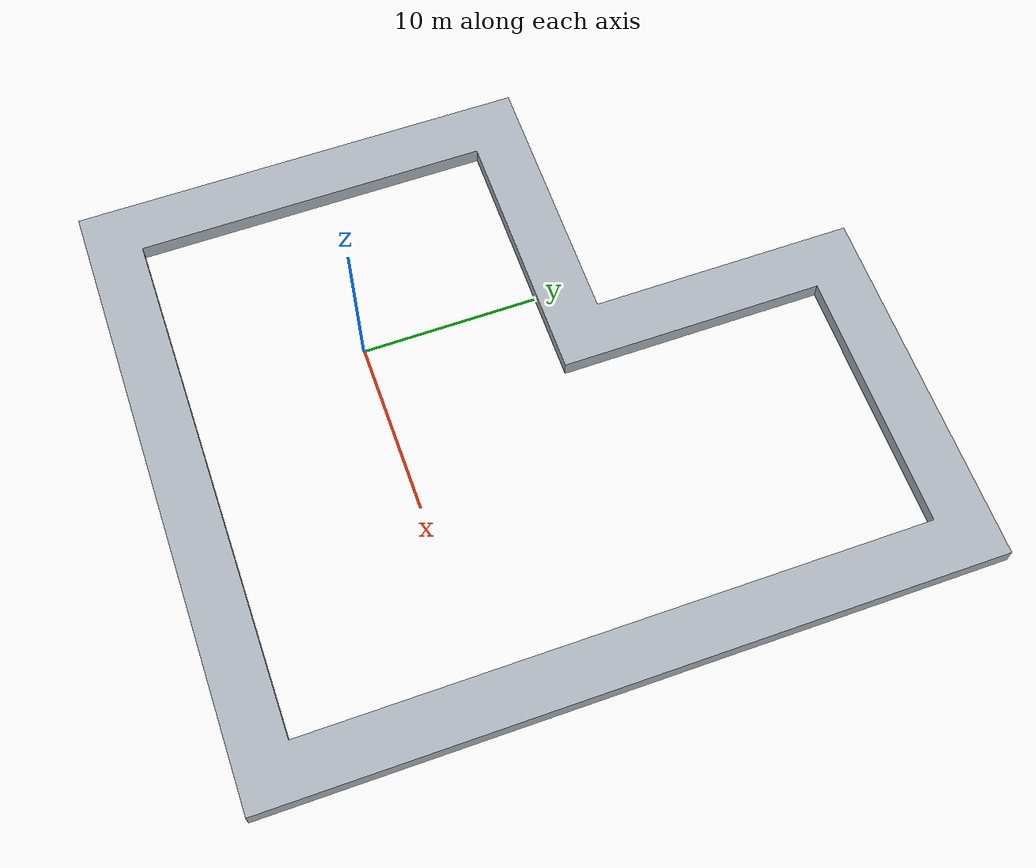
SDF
<?xml version="1.0" ?>
<sdf version="1.6">
  <model name="my_custom_model">
    <static>true</static>
    <link name="link">
      <collision name="collision">
        <geometry>
          <mesh>
            <uri>model://multi_explore_mapping/models/my_custom_model/meshes/wide.dae</uri>
          </mesh>
        </geometry>
      </collision>
      <visual name="visual">
        <geometry>
          <mesh>
            <uri>model://multi_explore_mapping/models/my_custom_model/meshes/wide.dae</uri>
          </mesh>
        </geometry>
      </visual>
    </link>
  </model>
</sdf>
